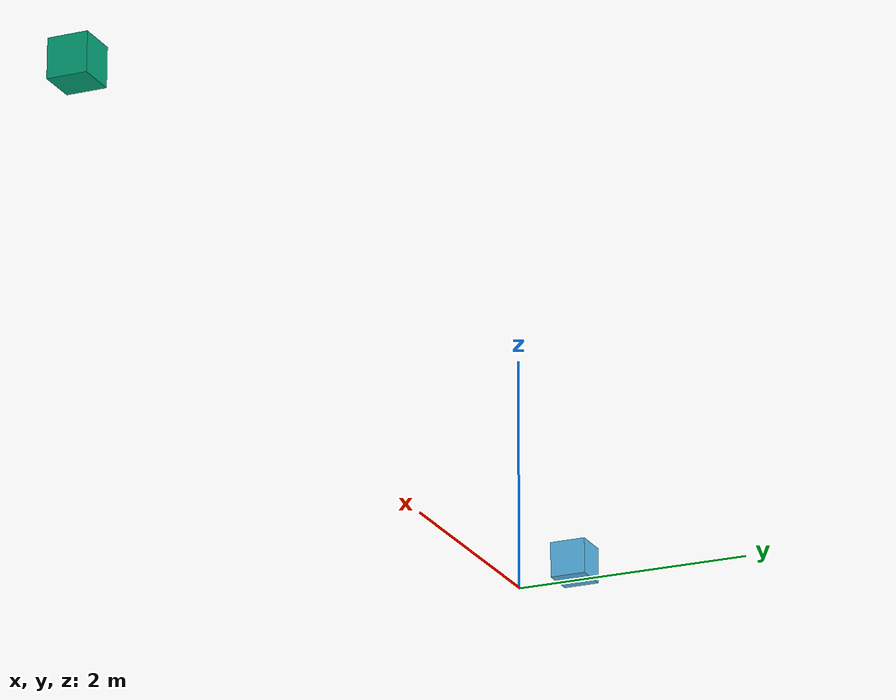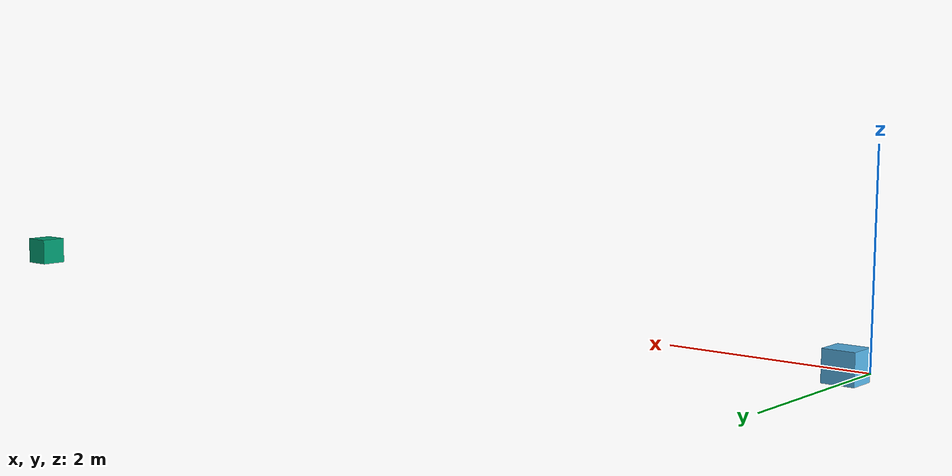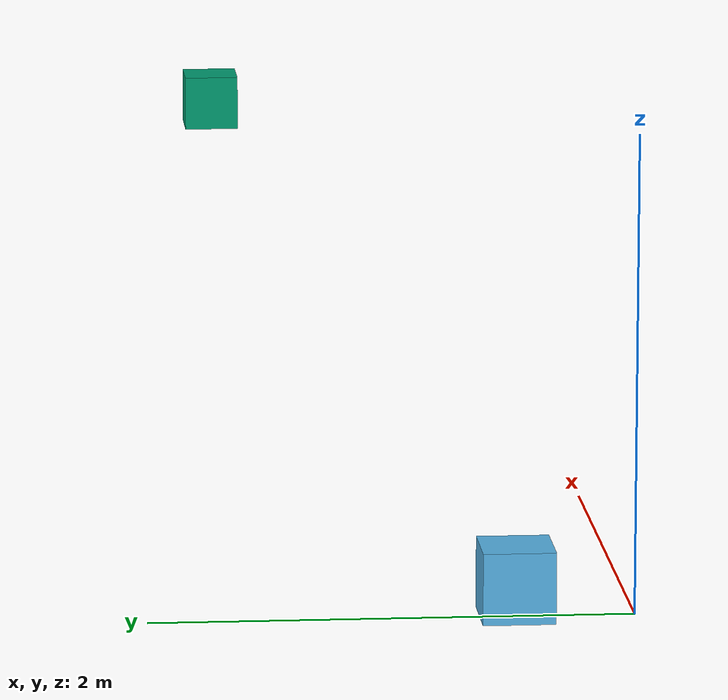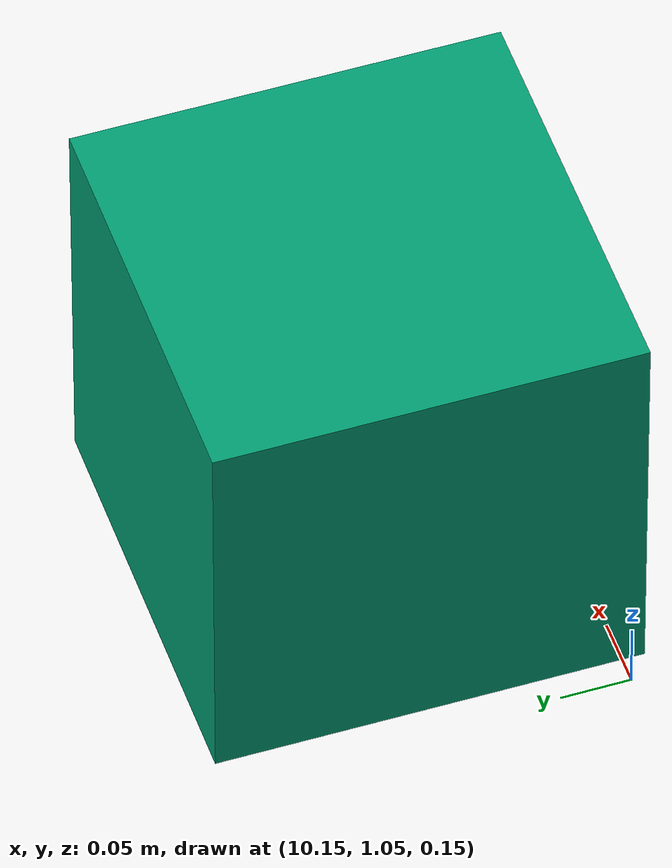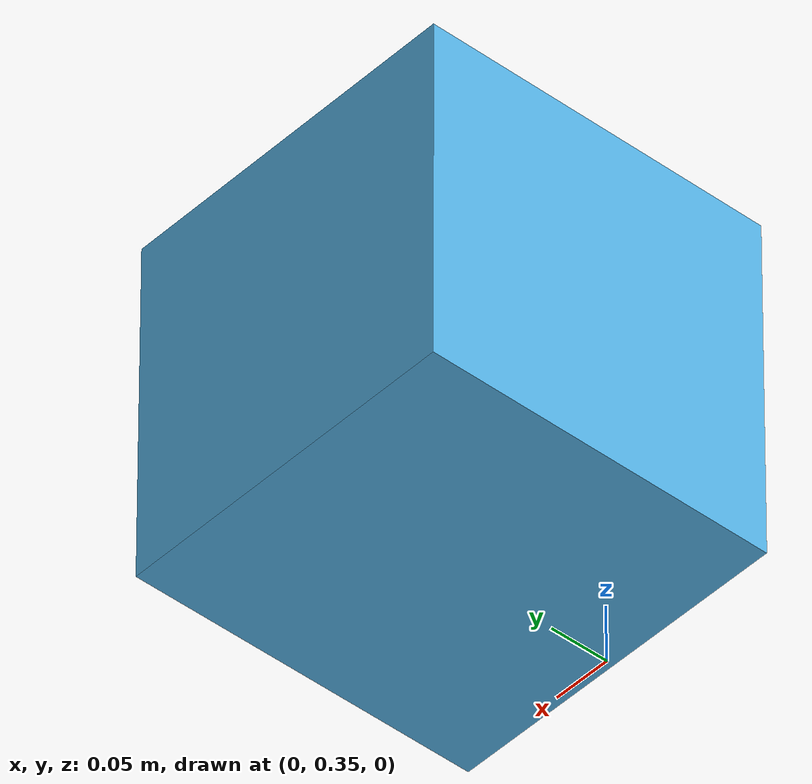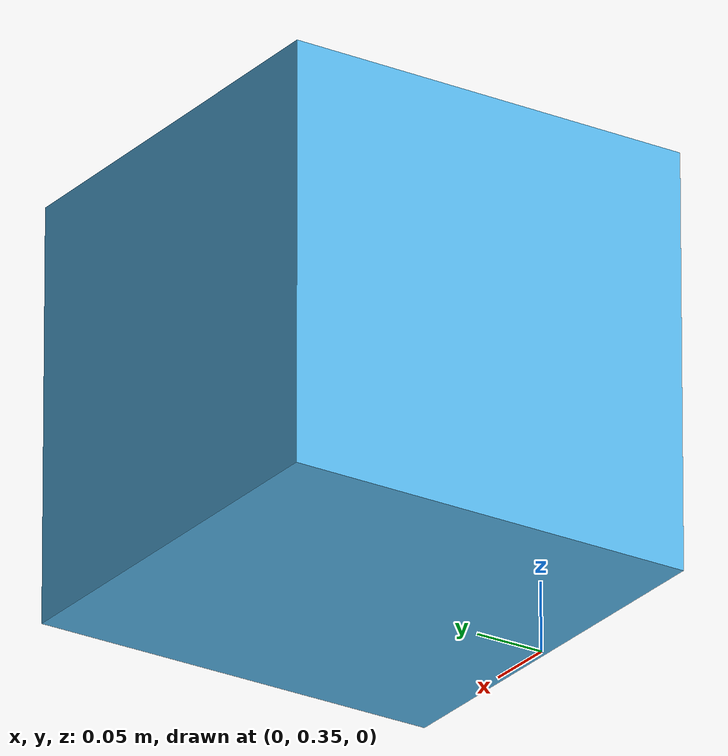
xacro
<?xml version="1.0"?>
<robot  xmlns:sensor="http://playerstage.sourceforge.net/gazebo/xmlschema/#sensor"
		xmlns:controller="http://playerstage.sourceforge.net/gazebo/xmlschema/#controller"
		xmlns:interface="http://playerstage.sourceforge.net/gazebo/xmlschema/#interface"
		xmlns:xacro="http://ros.org/wiki/xacro"
		name="obstacles" >

	<xacro:include filename="$(find commander)/urdf/sphere_obstacle.urdf.xacro" />
	<link name="base_obst" />
	<xacro:sphere_obstacle  xyz="0 0.5 0" r="0.2" name="sph1" />
	<xacro:sphere_obstacle  xyz="10.3 1.2 0.17" r="0.1" name="sph2" />
	<joint name="j1" type="fixed">
		<parent link="base_obst" />
		<child link="sph1" />
	</joint>
	<joint name="j2" type="fixed">
		<parent link="base_obst" />
		<child link="sph2" />
	</joint>
</robot>

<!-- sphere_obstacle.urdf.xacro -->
<robot  xmlns:sensor="http://playerstage.sourceforge.net/gazebo/xmlschema/#sensor"
		xmlns:controller="http://playerstage.sourceforge.net/gazebo/xmlschema/#controller"
		xmlns:interface="http://playerstage.sourceforge.net/gazebo/xmlschema/#interface"
		xmlns:xacro="http://ros.org/wiki/xacro"
		name="nexus_base" >

	<xacro:macro name="sphere_obstacle" params="xyz r name">
		<link name="${name}">
			<inertial>
				<origin xyz="${xyz}" />
				<mass value="1.0" />
				<inertia ixx="1.0" ixy="0.0"  ixz="0.0"  iyy="100.0"  iyz="0.0"  izz="1.0" />
			</inertial>
			<visual>
				<origin xyz="${xyz}" />
				<geometry>
					<mesh filename="package://commander/meshes/box.dae" scale="0.15 0.15 0.15"/>
				</geometry>
			</visual>
			<collision>
				<origin xyz="${xyz}" />
				<empty />
			</collision>
		</link>
		<gazebo reference="${name}">
			<static>true</static>
   			<turnGravityOff>true</turnGravityOff>
		</gazebo>
	</xacro:macro>
</robot>
